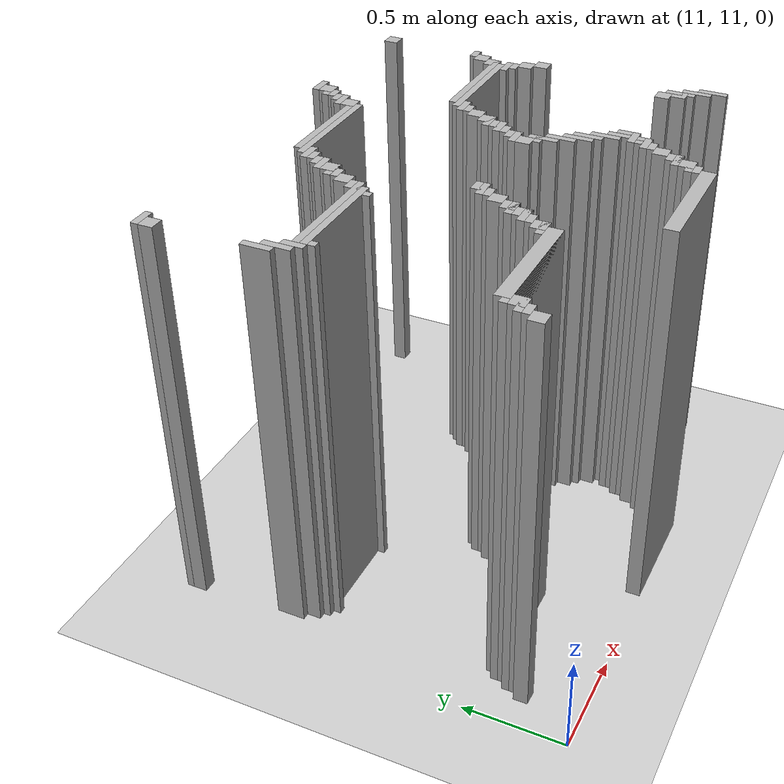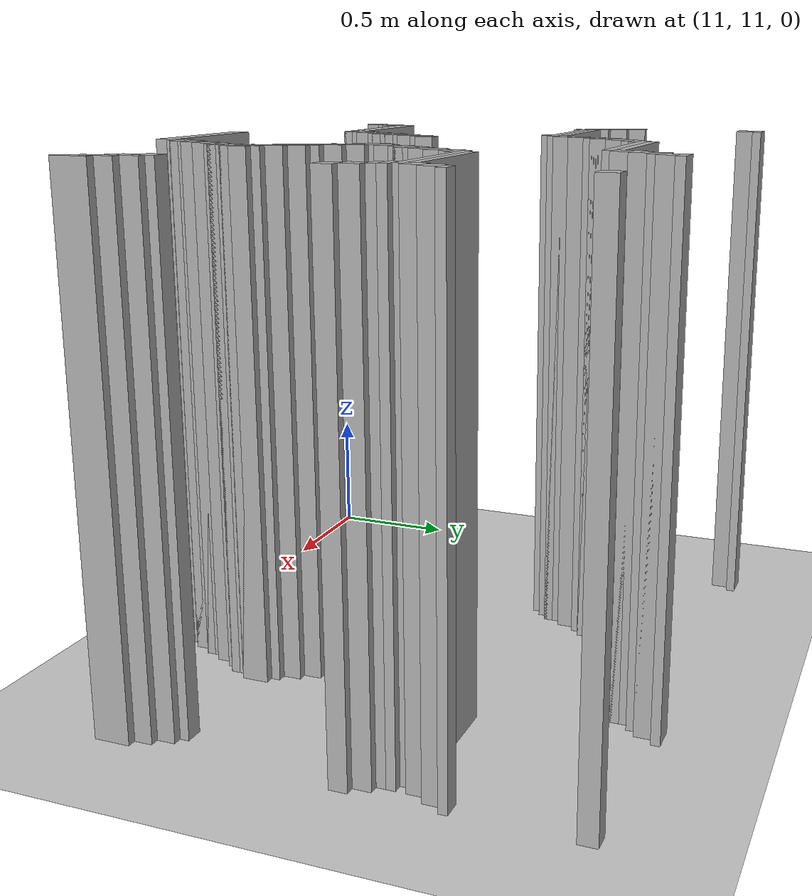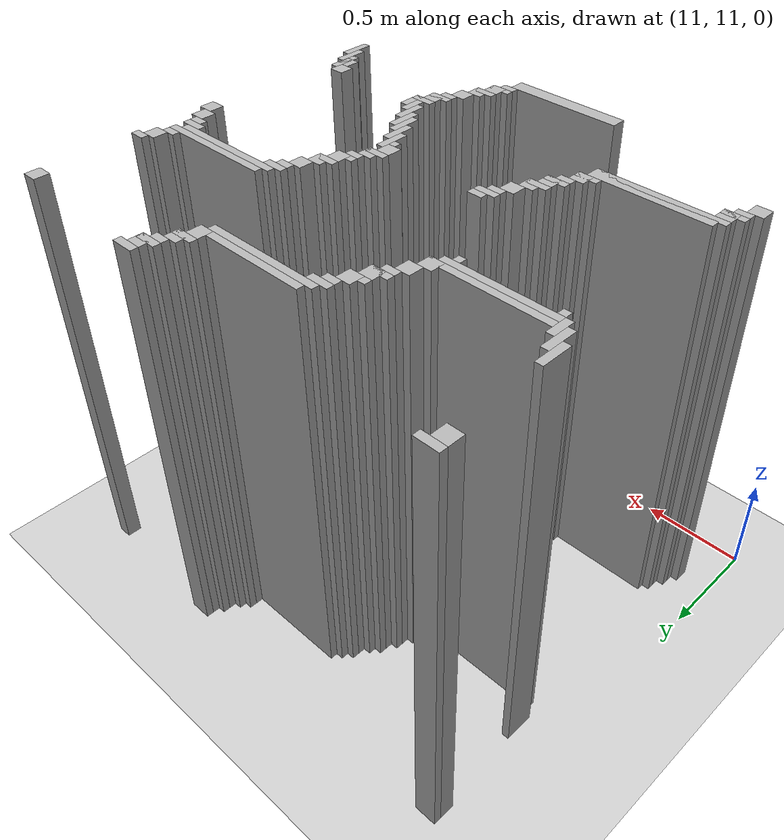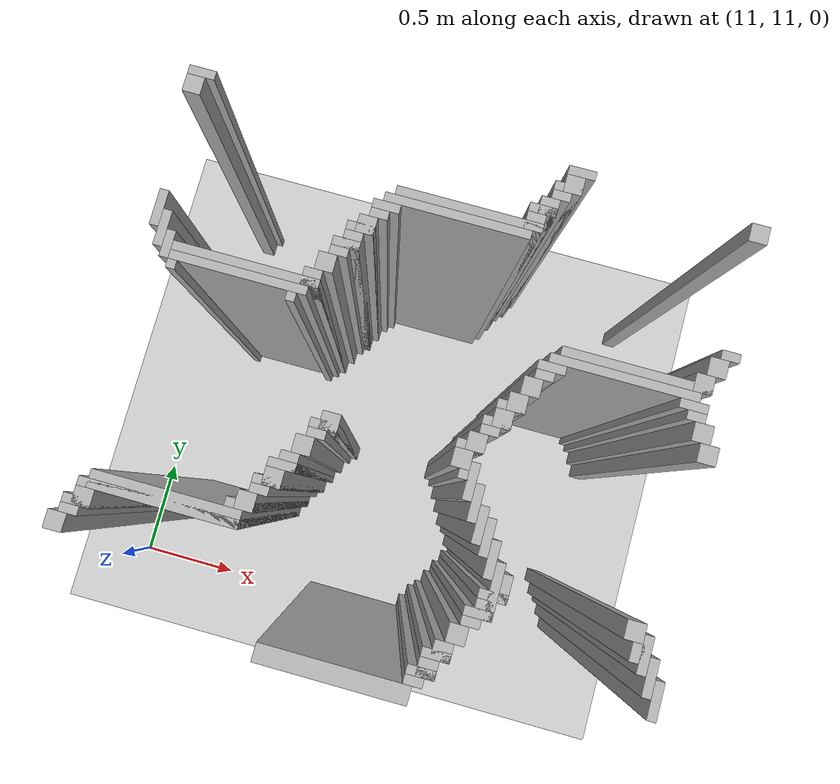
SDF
<sdf version="1.6">
 <world name="slam_world">
  <model name="ground_plane">
   <static>true</static>
   <link name="link">
    <collision name="collision">
     <geometry><plane><normal>0 0 1</normal><size>100 100</size></plane></geometry>
    </collision>
    <visual name="visual">
     <geometry><plane><normal>0 0 1</normal><size>100 100</size></plane></geometry>
     <material>
      <ambient>0.8 0.8 0.8 1</ambient>
      <diffuse>0.8 0.8 0.8 1</diffuse>
      <specular>0.8 0.8 0.8 1</specular>
     </material>
    </visual>
   </link>
  </model>
  <model name="wall_1475">
   <static>true</static>
   <pose>11.189095127610209 12.998839907192576 1.0 0 0 0</pose>
   <link name="link">
    <collision name="collision">
     <geometry><box><size>0.10440835266821345 0.03480278422273782 2.0</size></box></geometry>
    </collision>
    <visual name="visual">
     <geometry><box><size>0.10440835266821345 0.03480278422273782 2.0</size></box></geometry>
     <material><ambient>0.5 0.5 0.5 1</ambient><diffuse>0.7 0.7 0.7 1</diffuse></material>
    </visual>
   </link>
  </model>
  <model name="wall_1476">
   <static>true</static>
   <pose>12.650812064965196 12.998839907192576 1.0 0 0 0</pose>
   <link name="link">
    <collision name="collision">
     <geometry><box><size>0.10440835266821345 0.03480278422273782 2.0</size></box></geometry>
    </collision>
    <visual name="visual">
     <geometry><box><size>0.10440835266821345 0.03480278422273782 2.0</size></box></geometry>
     <material><ambient>0.5 0.5 0.5 1</ambient><diffuse>0.7 0.7 0.7 1</diffuse></material>
    </visual>
   </link>
  </model>
  <model name="wall_1491">
   <static>true</static>
   <pose>11.17169373549884 12.946635730858468 1.0 0 0 0</pose>
   <link name="link">
    <collision name="collision">
     <geometry><box><size>0.06960556844547564 0.06960556844547564 2.0</size></box></geometry>
    </collision>
    <visual name="visual">
     <geometry><box><size>0.06960556844547564 0.06960556844547564 2.0</size></box></geometry>
     <material><ambient>0.5 0.5 0.5 1</ambient><diffuse>0.7 0.7 0.7 1</diffuse></material>
    </visual>
   </link>
  </model>
  <model name="wall_1492">
   <static>true</static>
   <pose>12.633410672853827 12.946635730858468 1.0 0 0 0</pose>
   <link name="link">
    <collision name="collision">
     <geometry><box><size>0.06960556844547564 0.06960556844547564 2.0</size></box></geometry>
    </collision>
    <visual name="visual">
     <geometry><box><size>0.06960556844547564 0.06960556844547564 2.0</size></box></geometry>
     <material><ambient>0.5 0.5 0.5 1</ambient><diffuse>0.7 0.7 0.7 1</diffuse></material>
    </visual>
   </link>
  </model>
  <model name="wall_1493">
   <static>true</static>
   <pose>13.329466357308585 12.946635730858468 1.0 0 0 0</pose>
   <link name="link">
    <collision name="collision">
     <geometry><box><size>0.06960556844547564 0.06960556844547564 2.0</size></box></geometry>
    </collision>
    <visual name="visual">
     <geometry><box><size>0.06960556844547564 0.06960556844547564 2.0</size></box></geometry>
     <material><ambient>0.5 0.5 0.5 1</ambient><diffuse>0.7 0.7 0.7 1</diffuse></material>
    </visual>
   </link>
  </model>
  <model name="wall_1508">
   <static>true</static>
   <pose>12.616009280742459 12.929234338747099 1.0 0 0 0</pose>
   <link name="link">
    <collision name="collision">
     <geometry><box><size>0.10440835266821345 0.03480278422273782 2.0</size></box></geometry>
    </collision>
    <visual name="visual">
     <geometry><box><size>0.10440835266821345 0.03480278422273782 2.0</size></box></geometry>
     <material><ambient>0.5 0.5 0.5 1</ambient><diffuse>0.7 0.7 0.7 1</diffuse></material>
    </visual>
   </link>
  </model>
  <model name="wall_1519">
   <static>true</static>
   <pose>12.59860788863109 12.894431554524362 1.0 0 0 0</pose>
   <link name="link">
    <collision name="collision">
     <geometry><box><size>0.06960556844547564 0.03480278422273782 2.0</size></box></geometry>
    </collision>
    <visual name="visual">
     <geometry><box><size>0.06960556844547564 0.03480278422273782 2.0</size></box></geometry>
     <material><ambient>0.5 0.5 0.5 1</ambient><diffuse>0.7 0.7 0.7 1</diffuse></material>
    </visual>
   </link>
  </model>
  <model name="wall_1533">
   <static>true</static>
   <pose>12.563805104408353 12.842227378190255 1.0 0 0 0</pose>
   <link name="link">
    <collision name="collision">
     <geometry><box><size>0.06960556844547564 0.06960556844547564 2.0</size></box></geometry>
    </collision>
    <visual name="visual">
     <geometry><box><size>0.06960556844547564 0.06960556844547564 2.0</size></box></geometry>
     <material><ambient>0.5 0.5 0.5 1</ambient><diffuse>0.7 0.7 0.7 1</diffuse></material>
    </visual>
   </link>
  </model>
  <model name="wall_1549">
   <static>true</static>
   <pose>12.546403712296984 12.824825986078885 1.0 0 0 0</pose>
   <link name="link">
    <collision name="collision">
     <geometry><box><size>0.10440835266821345 0.03480278422273782 2.0</size></box></geometry>
    </collision>
    <visual name="visual">
     <geometry><box><size>0.10440835266821345 0.03480278422273782 2.0</size></box></geometry>
     <material><ambient>0.5 0.5 0.5 1</ambient><diffuse>0.7 0.7 0.7 1</diffuse></material>
    </visual>
   </link>
  </model>
  <model name="wall_1560">
   <static>true</static>
   <pose>12.529002320185615 12.772621809744779 1.0 0 0 0</pose>
   <link name="link">
    <collision name="collision">
     <geometry><box><size>0.06960556844547564 0.06960556844547564 2.0</size></box></geometry>
    </collision>
    <visual name="visual">
     <geometry><box><size>0.06960556844547564 0.06960556844547564 2.0</size></box></geometry>
     <material><ambient>0.5 0.5 0.5 1</ambient><diffuse>0.7 0.7 0.7 1</diffuse></material>
    </visual>
   </link>
  </model>
  <model name="wall_1572">
   <static>true</static>
   <pose>12.28538283062645 12.75522041763341 1.0 0 0 0</pose>
   <link name="link">
    <collision name="collision">
     <geometry><box><size>0.5568445475638051 0.03480278422273782 2.0</size></box></geometry>
    </collision>
    <visual name="visual">
     <geometry><box><size>0.5568445475638051 0.03480278422273782 2.0</size></box></geometry>
     <material><ambient>0.5 0.5 0.5 1</ambient><diffuse>0.7 0.7 0.7 1</diffuse></material>
    </visual>
   </link>
  </model>
  <model name="wall_1583">
   <static>true</static>
   <pose>12.250580046403712 12.720417633410673 1.0 0 0 0</pose>
   <link name="link">
    <collision name="collision">
     <geometry><box><size>0.5568445475638051 0.03480278422273782 2.0</size></box></geometry>
    </collision>
    <visual name="visual">
     <geometry><box><size>0.5568445475638051 0.03480278422273782 2.0</size></box></geometry>
     <material><ambient>0.5 0.5 0.5 1</ambient><diffuse>0.7 0.7 0.7 1</diffuse></material>
    </visual>
   </link>
  </model>
  <model name="wall_1595">
   <static>true</static>
   <pose>11.989559164733178 12.685614849187935 1.0 0 0 0</pose>
   <link name="link">
    <collision name="collision">
     <geometry><box><size>0.10440835266821345 0.03480278422273782 2.0</size></box></geometry>
    </collision>
    <visual name="visual">
     <geometry><box><size>0.10440835266821345 0.03480278422273782 2.0</size></box></geometry>
     <material><ambient>0.5 0.5 0.5 1</ambient><diffuse>0.7 0.7 0.7 1</diffuse></material>
    </visual>
   </link>
  </model>
  <model name="wall_1607">
   <static>true</static>
   <pose>11.97215777262181 12.650812064965196 1.0 0 0 0</pose>
   <link name="link">
    <collision name="collision">
     <geometry><box><size>0.06960556844547564 0.03480278422273782 2.0</size></box></geometry>
    </collision>
    <visual name="visual">
     <geometry><box><size>0.06960556844547564 0.03480278422273782 2.0</size></box></geometry>
     <material><ambient>0.5 0.5 0.5 1</ambient><diffuse>0.7 0.7 0.7 1</diffuse></material>
    </visual>
   </link>
  </model>
  <model name="wall_1619">
   <static>true</static>
   <pose>11.937354988399072 12.59860788863109 1.0 0 0 0</pose>
   <link name="link">
    <collision name="collision">
     <geometry><box><size>0.06960556844547564 0.06960556844547564 2.0</size></box></geometry>
    </collision>
    <visual name="visual">
     <geometry><box><size>0.06960556844547564 0.06960556844547564 2.0</size></box></geometry>
     <material><ambient>0.5 0.5 0.5 1</ambient><diffuse>0.7 0.7 0.7 1</diffuse></material>
    </visual>
   </link>
  </model>
  <model name="wall_1632">
   <static>true</static>
   <pose>11.919953596287703 12.581206496519721 1.0 0 0 0</pose>
   <link name="link">
    <collision name="collision">
     <geometry><box><size>0.10440835266821345 0.03480278422273782 2.0</size></box></geometry>
    </collision>
    <visual name="visual">
     <geometry><box><size>0.10440835266821345 0.03480278422273782 2.0</size></box></geometry>
     <material><ambient>0.5 0.5 0.5 1</ambient><diffuse>0.7 0.7 0.7 1</diffuse></material>
    </visual>
   </link>
  </model>
  <model name="wall_1643">
   <static>true</static>
   <pose>11.902552204176333 12.529002320185615 1.0 0 0 0</pose>
   <link name="link">
    <collision name="collision">
     <geometry><box><size>0.06960556844547564 0.06960556844547564 2.0</size></box></geometry>
    </collision>
    <visual name="visual">
     <geometry><box><size>0.06960556844547564 0.06960556844547564 2.0</size></box></geometry>
     <material><ambient>0.5 0.5 0.5 1</ambient><diffuse>0.7 0.7 0.7 1</diffuse></material>
    </visual>
   </link>
  </model>
  <model name="wall_1655">
   <static>true</static>
   <pose>11.189095127610209 12.459396751740138 1.0 0 0 0</pose>
   <link name="link">
    <collision name="collision">
     <geometry><box><size>0.03480278422273782 0.13921113689095127 2.0</size></box></geometry>
    </collision>
    <visual name="visual">
     <geometry><box><size>0.03480278422273782 0.13921113689095127 2.0</size></box></geometry>
     <material><ambient>0.5 0.5 0.5 1</ambient><diffuse>0.7 0.7 0.7 1</diffuse></material>
    </visual>
   </link>
  </model>
  <model name="wall_1656">
   <static>true</static>
   <pose>11.885150812064964 12.511600928074245 1.0 0 0 0</pose>
   <link name="link">
    <collision name="collision">
     <geometry><box><size>0.10440835266821345 0.03480278422273782 2.0</size></box></geometry>
    </collision>
    <visual name="visual">
     <geometry><box><size>0.10440835266821345 0.03480278422273782 2.0</size></box></geometry>
     <material><ambient>0.5 0.5 0.5 1</ambient><diffuse>0.7 0.7 0.7 1</diffuse></material>
    </visual>
   </link>
  </model>
  <model name="wall_1664">
   <static>true</static>
   <pose>11.867749419953595 12.476798143851507 1.0 0 0 0</pose>
   <link name="link">
    <collision name="collision">
     <geometry><box><size>0.06960556844547564 0.03480278422273782 2.0</size></box></geometry>
    </collision>
    <visual name="visual">
     <geometry><box><size>0.06960556844547564 0.03480278422273782 2.0</size></box></geometry>
     <material><ambient>0.5 0.5 0.5 1</ambient><diffuse>0.7 0.7 0.7 1</diffuse></material>
    </visual>
   </link>
  </model>
  <model name="wall_1665">
   <static>true</static>
   <pose>13.329466357308585 12.476798143851507 1.0 0 0 0</pose>
   <link name="link">
    <collision name="collision">
     <geometry><box><size>0.06960556844547564 0.03480278422273782 2.0</size></box></geometry>
    </collision>
    <visual name="visual">
     <geometry><box><size>0.06960556844547564 0.03480278422273782 2.0</size></box></geometry>
     <material><ambient>0.5 0.5 0.5 1</ambient><diffuse>0.7 0.7 0.7 1</diffuse></material>
    </visual>
   </link>
  </model>
  <model name="wall_1676">
   <static>true</static>
   <pose>11.223897911832946 12.389791183294664 1.0 0 0 0</pose>
   <link name="link">
    <collision name="collision">
     <geometry><box><size>0.03480278422273782 0.13921113689095127 2.0</size></box></geometry>
    </collision>
    <visual name="visual">
     <geometry><box><size>0.03480278422273782 0.13921113689095127 2.0</size></box></geometry>
     <material><ambient>0.5 0.5 0.5 1</ambient><diffuse>0.7 0.7 0.7 1</diffuse></material>
    </visual>
   </link>
  </model>
  <model name="wall_1677">
   <static>true</static>
   <pose>11.832946635730858 12.424593967517401 1.0 0 0 0</pose>
   <link name="link">
    <collision name="collision">
     <geometry><box><size>0.06960556844547564 0.06960556844547564 2.0</size></box></geometry>
    </collision>
    <visual name="visual">
     <geometry><box><size>0.06960556844547564 0.06960556844547564 2.0</size></box></geometry>
     <material><ambient>0.5 0.5 0.5 1</ambient><diffuse>0.7 0.7 0.7 1</diffuse></material>
    </visual>
   </link>
  </model>
  <model name="wall_1678">
   <static>true</static>
   <pose>13.294663573085847 12.424593967517401 1.0 0 0 0</pose>
   <link name="link">
    <collision name="collision">
     <geometry><box><size>0.06960556844547564 0.06960556844547564 2.0</size></box></geometry>
    </collision>
    <visual name="visual">
     <geometry><box><size>0.06960556844547564 0.06960556844547564 2.0</size></box></geometry>
     <material><ambient>0.5 0.5 0.5 1</ambient><diffuse>0.7 0.7 0.7 1</diffuse></material>
    </visual>
   </link>
  </model>
  <model name="wall_1689">
   <static>true</static>
   <pose>11.258700696055683 12.337587006960556 1.0 0 0 0</pose>
   <link name="link">
    <collision name="collision">
     <geometry><box><size>0.03480278422273782 0.10440835266821345 2.0</size></box></geometry>
    </collision>
    <visual name="visual">
     <geometry><box><size>0.03480278422273782 0.10440835266821345 2.0</size></box></geometry>
     <material><ambient>0.5 0.5 0.5 1</ambient><diffuse>0.7 0.7 0.7 1</diffuse></material>
    </visual>
   </link>
  </model>
  <model name="wall_1690">
   <static>true</static>
   <pose>11.79814385150812 12.354988399071924 1.0 0 0 0</pose>
   <link name="link">
    <collision name="collision">
     <geometry><box><size>0.06960556844547564 0.06960556844547564 2.0</size></box></geometry>
    </collision>
    <visual name="visual">
     <geometry><box><size>0.06960556844547564 0.06960556844547564 2.0</size></box></geometry>
     <material><ambient>0.5 0.5 0.5 1</ambient><diffuse>0.7 0.7 0.7 1</diffuse></material>
    </visual>
   </link>
  </model>
  <model name="wall_1691">
   <static>true</static>
   <pose>13.259860788863108 12.354988399071924 1.0 0 0 0</pose>
   <link name="link">
    <collision name="collision">
     <geometry><box><size>0.06960556844547564 0.06960556844547564 2.0</size></box></geometry>
    </collision>
    <visual name="visual">
     <geometry><box><size>0.06960556844547564 0.06960556844547564 2.0</size></box></geometry>
     <material><ambient>0.5 0.5 0.5 1</ambient><diffuse>0.7 0.7 0.7 1</diffuse></material>
    </visual>
   </link>
  </model>
  <model name="wall_1702">
   <static>true</static>
   <pose>11.554524361948955 12.337587006960556 1.0 0 0 0</pose>
   <link name="link">
    <collision name="collision">
     <geometry><box><size>0.5568445475638051 0.03480278422273782 2.0</size></box></geometry>
    </collision>
    <visual name="visual">
     <geometry><box><size>0.5568445475638051 0.03480278422273782 2.0</size></box></geometry>
     <material><ambient>0.5 0.5 0.5 1</ambient><diffuse>0.7 0.7 0.7 1</diffuse></material>
    </visual>
   </link>
  </model>
  <model name="wall_1703">
   <static>true</static>
   <pose>13.016241299303944 12.337587006960556 1.0 0 0 0</pose>
   <link name="link">
    <collision name="collision">
     <geometry><box><size>0.5568445475638051 0.03480278422273782 2.0</size></box></geometry>
    </collision>
    <visual name="visual">
     <geometry><box><size>0.5568445475638051 0.03480278422273782 2.0</size></box></geometry>
     <material><ambient>0.5 0.5 0.5 1</ambient><diffuse>0.7 0.7 0.7 1</diffuse></material>
    </visual>
   </link>
  </model>
  <model name="wall_1714">
   <static>true</static>
   <pose>11.537122969837586 12.302784222737818 1.0 0 0 0</pose>
   <link name="link">
    <collision name="collision">
     <geometry><box><size>0.5220417633410672 0.03480278422273782 2.0</size></box></geometry>
    </collision>
    <visual name="visual">
     <geometry><box><size>0.5220417633410672 0.03480278422273782 2.0</size></box></geometry>
     <material><ambient>0.5 0.5 0.5 1</ambient><diffuse>0.7 0.7 0.7 1</diffuse></material>
    </visual>
   </link>
  </model>
  <model name="wall_1715">
   <static>true</static>
   <pose>12.981438515081207 12.302784222737818 1.0 0 0 0</pose>
   <link name="link">
    <collision name="collision">
     <geometry><box><size>0.5568445475638051 0.03480278422273782 2.0</size></box></geometry>
    </collision>
    <visual name="visual">
     <geometry><box><size>0.5568445475638051 0.03480278422273782 2.0</size></box></geometry>
     <material><ambient>0.5 0.5 0.5 1</ambient><diffuse>0.7 0.7 0.7 1</diffuse></material>
    </visual>
   </link>
  </model>
  <model name="wall_1731">
   <static>true</static>
   <pose>11.293503480278423 12.267981438515081 1.0 0 0 0</pose>
   <link name="link">
    <collision name="collision">
     <geometry><box><size>0.03480278422273782 0.03480278422273782 2.0</size></box></geometry>
    </collision>
    <visual name="visual">
     <geometry><box><size>0.03480278422273782 0.03480278422273782 2.0</size></box></geometry>
     <material><ambient>0.5 0.5 0.5 1</ambient><diffuse>0.7 0.7 0.7 1</diffuse></material>
    </visual>
   </link>
  </model>
  <model name="wall_1732">
   <static>true</static>
   <pose>11.745939675174013 12.267981438515081 1.0 0 0 0</pose>
   <link name="link">
    <collision name="collision">
     <geometry><box><size>0.03480278422273782 0.03480278422273782 2.0</size></box></geometry>
    </collision>
    <visual name="visual">
     <geometry><box><size>0.03480278422273782 0.03480278422273782 2.0</size></box></geometry>
     <material><ambient>0.5 0.5 0.5 1</ambient><diffuse>0.7 0.7 0.7 1</diffuse></material>
    </visual>
   </link>
  </model>
  <model name="wall_1733">
   <static>true</static>
   <pose>12.720417633410673 12.267981438515081 1.0 0 0 0</pose>
   <link name="link">
    <collision name="collision">
     <geometry><box><size>0.10440835266821345 0.03480278422273782 2.0</size></box></geometry>
    </collision>
    <visual name="visual">
     <geometry><box><size>0.10440835266821345 0.03480278422273782 2.0</size></box></geometry>
     <material><ambient>0.5 0.5 0.5 1</ambient><diffuse>0.7 0.7 0.7 1</diffuse></material>
    </visual>
   </link>
  </model>
  <model name="wall_1734">
   <static>true</static>
   <pose>13.24245939675174 12.267981438515081 1.0 0 0 0</pose>
   <link name="link">
    <collision name="collision">
     <geometry><box><size>0.10440835266821345 0.03480278422273782 2.0</size></box></geometry>
    </collision>
    <visual name="visual">
     <geometry><box><size>0.10440835266821345 0.03480278422273782 2.0</size></box></geometry>
     <material><ambient>0.5 0.5 0.5 1</ambient><diffuse>0.7 0.7 0.7 1</diffuse></material>
    </visual>
   </link>
  </model>
  <model name="wall_1749">
   <static>true</static>
   <pose>12.703016241299304 12.233178654292344 1.0 0 0 0</pose>
   <link name="link">
    <collision name="collision">
     <geometry><box><size>0.06960556844547564 0.03480278422273782 2.0</size></box></geometry>
    </collision>
    <visual name="visual">
     <geometry><box><size>0.06960556844547564 0.03480278422273782 2.0</size></box></geometry>
     <material><ambient>0.5 0.5 0.5 1</ambient><diffuse>0.7 0.7 0.7 1</diffuse></material>
    </visual>
   </link>
  </model>
  <model name="wall_1750">
   <static>true</static>
   <pose>13.259860788863108 12.233178654292344 1.0 0 0 0</pose>
   <link name="link">
    <collision name="collision">
     <geometry><box><size>0.06960556844547564 0.03480278422273782 2.0</size></box></geometry>
    </collision>
    <visual name="visual">
     <geometry><box><size>0.06960556844547564 0.03480278422273782 2.0</size></box></geometry>
     <material><ambient>0.5 0.5 0.5 1</ambient><diffuse>0.7 0.7 0.7 1</diffuse></material>
    </visual>
   </link>
  </model>
  <model name="wall_1765">
   <static>true</static>
   <pose>12.668213457076565 12.180974477958236 1.0 0 0 0</pose>
   <link name="link">
    <collision name="collision">
     <geometry><box><size>0.06960556844547564 0.06960556844547564 2.0</size></box></geometry>
    </collision>
    <visual name="visual">
     <geometry><box><size>0.06960556844547564 0.06960556844547564 2.0</size></box></geometry>
     <material><ambient>0.5 0.5 0.5 1</ambient><diffuse>0.7 0.7 0.7 1</diffuse></material>
    </visual>
   </link>
  </model>
  <model name="wall_1766">
   <static>true</static>
   <pose>13.294663573085847 12.180974477958236 1.0 0 0 0</pose>
   <link name="link">
    <collision name="collision">
     <geometry><box><size>0.06960556844547564 0.06960556844547564 2.0</size></box></geometry>
    </collision>
    <visual name="visual">
     <geometry><box><size>0.06960556844547564 0.06960556844547564 2.0</size></box></geometry>
     <material><ambient>0.5 0.5 0.5 1</ambient><diffuse>0.7 0.7 0.7 1</diffuse></material>
    </visual>
   </link>
  </model>
  <model name="wall_1781">
   <static>true</static>
   <pose>12.633410672853827 12.11136890951276 1.0 0 0 0</pose>
   <link name="link">
    <collision name="collision">
     <geometry><box><size>0.06960556844547564 0.06960556844547564 2.0</size></box></geometry>
    </collision>
    <visual name="visual">
     <geometry><box><size>0.06960556844547564 0.06960556844547564 2.0</size></box></geometry>
     <material><ambient>0.5 0.5 0.5 1</ambient><diffuse>0.7 0.7 0.7 1</diffuse></material>
    </visual>
   </link>
  </model>
  <model name="wall_1782">
   <static>true</static>
   <pose>13.329466357308585 12.11136890951276 1.0 0 0 0</pose>
   <link name="link">
    <collision name="collision">
     <geometry><box><size>0.06960556844547564 0.06960556844547564 2.0</size></box></geometry>
    </collision>
    <visual name="visual">
     <geometry><box><size>0.06960556844547564 0.06960556844547564 2.0</size></box></geometry>
     <material><ambient>0.5 0.5 0.5 1</ambient><diffuse>0.7 0.7 0.7 1</diffuse></material>
    </visual>
   </link>
  </model>
  <model name="wall_1797">
   <static>true</static>
   <pose>12.616009280742459 12.093967517401392 1.0 0 0 0</pose>
   <link name="link">
    <collision name="collision">
     <geometry><box><size>0.10440835266821345 0.03480278422273782 2.0</size></box></geometry>
    </collision>
    <visual name="visual">
     <geometry><box><size>0.10440835266821345 0.03480278422273782 2.0</size></box></geometry>
     <material><ambient>0.5 0.5 0.5 1</ambient><diffuse>0.7 0.7 0.7 1</diffuse></material>
    </visual>
   </link>
  </model>
  <model name="wall_1807">
   <static>true</static>
   <pose>12.59860788863109 12.041763341067284 1.0 0 0 0</pose>
   <link name="link">
    <collision name="collision">
     <geometry><box><size>0.06960556844547564 0.06960556844547564 2.0</size></box></geometry>
    </collision>
    <visual name="visual">
     <geometry><box><size>0.06960556844547564 0.06960556844547564 2.0</size></box></geometry>
     <material><ambient>0.5 0.5 0.5 1</ambient><diffuse>0.7 0.7 0.7 1</diffuse></material>
    </visual>
   </link>
  </model>
  <model name="wall_1823">
   <static>true</static>
   <pose>12.581206496519721 12.024361948955915 1.0 0 0 0</pose>
   <link name="link">
    <collision name="collision">
     <geometry><box><size>0.10440835266821345 0.03480278422273782 2.0</size></box></geometry>
    </collision>
    <visual name="visual">
     <geometry><box><size>0.10440835266821345 0.03480278422273782 2.0</size></box></geometry>
     <material><ambient>0.5 0.5 0.5 1</ambient><diffuse>0.7 0.7 0.7 1</diffuse></material>
    </visual>
   </link>
  </model>
  <model name="wall_1832">
   <static>true</static>
   <pose>12.563805104408353 11.989559164733178 1.0 0 0 0</pose>
   <link name="link">
    <collision name="collision">
     <geometry><box><size>0.06960556844547564 0.03480278422273782 2.0</size></box></geometry>
    </collision>
    <visual name="visual">
     <geometry><box><size>0.06960556844547564 0.03480278422273782 2.0</size></box></geometry>
     <material><ambient>0.5 0.5 0.5 1</ambient><diffuse>0.7 0.7 0.7 1</diffuse></material>
    </visual>
   </link>
  </model>
  <model name="wall_1846">
   <static>true</static>
   <pose>12.529002320185615 11.937354988399072 1.0 0 0 0</pose>
   <link name="link">
    <collision name="collision">
     <geometry><box><size>0.06960556844547564 0.06960556844547564 2.0</size></box></geometry>
    </collision>
    <visual name="visual">
     <geometry><box><size>0.06960556844547564 0.06960556844547564 2.0</size></box></geometry>
     <material><ambient>0.5 0.5 0.5 1</ambient><diffuse>0.7 0.7 0.7 1</diffuse></material>
    </visual>
   </link>
  </model>
  <model name="wall_1862">
   <static>true</static>
   <pose>12.511600928074245 11.919953596287703 1.0 0 0 0</pose>
   <link name="link">
    <collision name="collision">
     <geometry><box><size>0.10440835266821345 0.03480278422273782 2.0</size></box></geometry>
    </collision>
    <visual name="visual">
     <geometry><box><size>0.10440835266821345 0.03480278422273782 2.0</size></box></geometry>
     <material><ambient>0.5 0.5 0.5 1</ambient><diffuse>0.7 0.7 0.7 1</diffuse></material>
    </visual>
   </link>
  </model>
  <model name="wall_1874">
   <static>true</static>
   <pose>12.006960556844547 11.867749419953595 1.0 0 0 0</pose>
   <link name="link">
    <collision name="collision">
     <geometry><box><size>0.06960556844547564 0.06960556844547564 2.0</size></box></geometry>
    </collision>
    <visual name="visual">
     <geometry><box><size>0.06960556844547564 0.06960556844547564 2.0</size></box></geometry>
     <material><ambient>0.5 0.5 0.5 1</ambient><diffuse>0.7 0.7 0.7 1</diffuse></material>
    </visual>
   </link>
  </model>
  <model name="wall_1875">
   <static>true</static>
   <pose>12.494199535962876 11.867749419953595 1.0 0 0 0</pose>
   <link name="link">
    <collision name="collision">
     <geometry><box><size>0.06960556844547564 0.06960556844547564 2.0</size></box></geometry>
    </collision>
    <visual name="visual">
     <geometry><box><size>0.06960556844547564 0.06960556844547564 2.0</size></box></geometry>
     <material><ambient>0.5 0.5 0.5 1</ambient><diffuse>0.7 0.7 0.7 1</diffuse></material>
    </visual>
   </link>
  </model>
  <model name="wall_1889">
   <static>true</static>
   <pose>11.989559164733178 11.850348027842227 1.0 0 0 0</pose>
   <link name="link">
    <collision name="collision">
     <geometry><box><size>0.10440835266821345 0.03480278422273782 2.0</size></box></geometry>
    </collision>
    <visual name="visual">
     <geometry><box><size>0.10440835266821345 0.03480278422273782 2.0</size></box></geometry>
     <material><ambient>0.5 0.5 0.5 1</ambient><diffuse>0.7 0.7 0.7 1</diffuse></material>
    </visual>
   </link>
  </model>
  <model name="wall_1890">
   <static>true</static>
   <pose>12.546403712296984 11.79814385150812 1.0 0 0 0</pose>
   <link name="link">
    <collision name="collision">
     <geometry><box><size>0.03480278422273782 0.13921113689095127 2.0</size></box></geometry>
    </collision>
    <visual name="visual">
     <geometry><box><size>0.03480278422273782 0.13921113689095127 2.0</size></box></geometry>
     <material><ambient>0.5 0.5 0.5 1</ambient><diffuse>0.7 0.7 0.7 1</diffuse></material>
    </visual>
   </link>
  </model>
  <model name="wall_1905">
   <static>true</static>
   <pose>11.97215777262181 11.81554524361949 1.0 0 0 0</pose>
   <link name="link">
    <collision name="collision">
     <geometry><box><size>0.06960556844547564 0.03480278422273782 2.0</size></box></geometry>
    </collision>
    <visual name="visual">
     <geometry><box><size>0.06960556844547564 0.03480278422273782 2.0</size></box></geometry>
     <material><ambient>0.5 0.5 0.5 1</ambient><diffuse>0.7 0.7 0.7 1</diffuse></material>
    </visual>
   </link>
  </model>
  <model name="wall_1906">
   <static>true</static>
   <pose>12.529002320185615 11.81554524361949 1.0 0 0 0</pose>
   <link name="link">
    <collision name="collision">
     <geometry><box><size>0.06960556844547564 0.03480278422273782 2.0</size></box></geometry>
    </collision>
    <visual name="visual">
     <geometry><box><size>0.06960556844547564 0.03480278422273782 2.0</size></box></geometry>
     <material><ambient>0.5 0.5 0.5 1</ambient><diffuse>0.7 0.7 0.7 1</diffuse></material>
    </visual>
   </link>
  </model>
  <model name="wall_1921">
   <static>true</static>
   <pose>11.937354988399072 11.763341067285383 1.0 0 0 0</pose>
   <link name="link">
    <collision name="collision">
     <geometry><box><size>0.06960556844547564 0.06960556844547564 2.0</size></box></geometry>
    </collision>
    <visual name="visual">
     <geometry><box><size>0.06960556844547564 0.06960556844547564 2.0</size></box></geometry>
     <material><ambient>0.5 0.5 0.5 1</ambient><diffuse>0.7 0.7 0.7 1</diffuse></material>
    </visual>
   </link>
  </model>
  <model name="wall_1922">
   <static>true</static>
   <pose>12.581206496519721 11.728538283062644 1.0 0 0 0</pose>
   <link name="link">
    <collision name="collision">
     <geometry><box><size>0.03480278422273782 0.13921113689095127 2.0</size></box></geometry>
    </collision>
    <visual name="visual">
     <geometry><box><size>0.03480278422273782 0.13921113689095127 2.0</size></box></geometry>
     <material><ambient>0.5 0.5 0.5 1</ambient><diffuse>0.7 0.7 0.7 1</diffuse></material>
    </visual>
   </link>
  </model>
  <model name="wall_1937">
   <static>true</static>
   <pose>11.902552204176333 11.693735498839906 1.0 0 0 0</pose>
   <link name="link">
    <collision name="collision">
     <geometry><box><size>0.06960556844547564 0.06960556844547564 2.0</size></box></geometry>
    </collision>
    <visual name="visual">
     <geometry><box><size>0.06960556844547564 0.06960556844547564 2.0</size></box></geometry>
     <material><ambient>0.5 0.5 0.5 1</ambient><diffuse>0.7 0.7 0.7 1</diffuse></material>
    </visual>
   </link>
  </model>
  <model name="wall_1938">
   <static>true</static>
   <pose>12.616009280742459 11.658932714617169 1.0 0 0 0</pose>
   <link name="link">
    <collision name="collision">
     <geometry><box><size>0.03480278422273782 0.13921113689095127 2.0</size></box></geometry>
    </collision>
    <visual name="visual">
     <geometry><box><size>0.03480278422273782 0.13921113689095127 2.0</size></box></geometry>
     <material><ambient>0.5 0.5 0.5 1</ambient><diffuse>0.7 0.7 0.7 1</diffuse></material>
    </visual>
   </link>
  </model>
  <model name="wall_1953">
   <static>true</static>
   <pose>11.885150812064964 11.676334106728538 1.0 0 0 0</pose>
   <link name="link">
    <collision name="collision">
     <geometry><box><size>0.10440835266821345 0.03480278422273782 2.0</size></box></geometry>
    </collision>
    <visual name="visual">
     <geometry><box><size>0.10440835266821345 0.03480278422273782 2.0</size></box></geometry>
     <material><ambient>0.5 0.5 0.5 1</ambient><diffuse>0.7 0.7 0.7 1</diffuse></material>
    </visual>
   </link>
  </model>
  <model name="wall_1954">
   <static>true</static>
   <pose>12.650812064965196 11.624129930394432 1.0 0 0 0</pose>
   <link name="link">
    <collision name="collision">
     <geometry><box><size>0.03480278422273782 0.13921113689095127 2.0</size></box></geometry>
    </collision>
    <visual name="visual">
     <geometry><box><size>0.03480278422273782 0.13921113689095127 2.0</size></box></geometry>
     <material><ambient>0.5 0.5 0.5 1</ambient><diffuse>0.7 0.7 0.7 1</diffuse></material>
    </visual>
   </link>
  </model>
  <model name="wall_1964">
   <static>true</static>
   <pose>11.867749419953595 11.624129930394432 1.0 0 0 0</pose>
   <link name="link">
    <collision name="collision">
     <geometry><box><size>0.06960556844547564 0.06960556844547564 2.0</size></box></geometry>
    </collision>
    <visual name="visual">
     <geometry><box><size>0.06960556844547564 0.06960556844547564 2.0</size></box></geometry>
     <material><ambient>0.5 0.5 0.5 1</ambient><diffuse>0.7 0.7 0.7 1</diffuse></material>
    </visual>
   </link>
  </model>
  <model name="wall_1978">
   <static>true</static>
   <pose>11.850348027842227 11.606728538283063 1.0 0 0 0</pose>
   <link name="link">
    <collision name="collision">
     <geometry><box><size>0.10440835266821345 0.03480278422273782 2.0</size></box></geometry>
    </collision>
    <visual name="visual">
     <geometry><box><size>0.10440835266821345 0.03480278422273782 2.0</size></box></geometry>
     <material><ambient>0.5 0.5 0.5 1</ambient><diffuse>0.7 0.7 0.7 1</diffuse></material>
    </visual>
   </link>
  </model>
  <model name="wall_1979">
   <static>true</static>
   <pose>12.685614849187935 11.554524361948955 1.0 0 0 0</pose>
   <link name="link">
    <collision name="collision">
     <geometry><box><size>0.03480278422273782 0.13921113689095127 2.0</size></box></geometry>
    </collision>
    <visual name="visual">
     <geometry><box><size>0.03480278422273782 0.13921113689095127 2.0</size></box></geometry>
     <material><ambient>0.5 0.5 0.5 1</ambient><diffuse>0.7 0.7 0.7 1</diffuse></material>
    </visual>
   </link>
  </model>
  <model name="wall_1989">
   <static>true</static>
   <pose>11.832946635730858 11.571925754060324 1.0 0 0 0</pose>
   <link name="link">
    <collision name="collision">
     <geometry><box><size>0.06960556844547564 0.03480278422273782 2.0</size></box></geometry>
    </collision>
    <visual name="visual">
     <geometry><box><size>0.06960556844547564 0.03480278422273782 2.0</size></box></geometry>
     <material><ambient>0.5 0.5 0.5 1</ambient><diffuse>0.7 0.7 0.7 1</diffuse></material>
    </visual>
   </link>
  </model>
  <model name="wall_2003">
   <static>true</static>
   <pose>11.79814385150812 11.519721577726218 1.0 0 0 0</pose>
   <link name="link">
    <collision name="collision">
     <geometry><box><size>0.06960556844547564 0.06960556844547564 2.0</size></box></geometry>
    </collision>
    <visual name="visual">
     <geometry><box><size>0.06960556844547564 0.06960556844547564 2.0</size></box></geometry>
     <material><ambient>0.5 0.5 0.5 1</ambient><diffuse>0.7 0.7 0.7 1</diffuse></material>
    </visual>
   </link>
  </model>
  <model name="wall_2004">
   <static>true</static>
   <pose>12.720417633410673 11.450116009280743 1.0 0 0 0</pose>
   <link name="link">
    <collision name="collision">
     <geometry><box><size>0.03480278422273782 0.2088167053364269 2.0</size></box></geometry>
    </collision>
    <visual name="visual">
     <geometry><box><size>0.03480278422273782 0.2088167053364269 2.0</size></box></geometry>
     <material><ambient>0.5 0.5 0.5 1</ambient><diffuse>0.7 0.7 0.7 1</diffuse></material>
    </visual>
   </link>
  </model>
  <model name="wall_2018">
   <static>true</static>
   <pose>11.780742459396752 11.502320185614849 1.0 0 0 0</pose>
   <link name="link">
    <collision name="collision">
     <geometry><box><size>0.10440835266821345 0.03480278422273782 2.0</size></box></geometry>
    </collision>
    <visual name="visual">
     <geometry><box><size>0.10440835266821345 0.03480278422273782 2.0</size></box></geometry>
     <material><ambient>0.5 0.5 0.5 1</ambient><diffuse>0.7 0.7 0.7 1</diffuse></material>
    </visual>
   </link>
  </model>
  <model name="wall_2019">
   <static>true</static>
   <pose>12.75522041763341 11.467517401392112 1.0 0 0 0</pose>
   <link name="link">
    <collision name="collision">
     <geometry><box><size>0.03480278422273782 0.10440835266821345 2.0</size></box></geometry>
    </collision>
    <visual name="visual">
     <geometry><box><size>0.03480278422273782 0.10440835266821345 2.0</size></box></geometry>
     <material><ambient>0.5 0.5 0.5 1</ambient><diffuse>0.7 0.7 0.7 1</diffuse></material>
    </visual>
   </link>
  </model>
  <model name="wall_2031">
   <static>true</static>
   <pose>11.519721577726218 11.450116009280743 1.0 0 0 0</pose>
   <link name="link">
    <collision name="collision">
     <geometry><box><size>0.5568445475638051 0.06960556844547564 2.0</size></box></geometry>
    </collision>
    <visual name="visual">
     <geometry><box><size>0.5568445475638051 0.06960556844547564 2.0</size></box></geometry>
     <material><ambient>0.5 0.5 0.5 1</ambient><diffuse>0.7 0.7 0.7 1</diffuse></material>
    </visual>
   </link>
  </model>
  <model name="wall_2032">
   <static>true</static>
   <pose>13.22505800464037 11.450116009280743 1.0 0 0 0</pose>
   <link name="link">
    <collision name="collision">
     <geometry><box><size>0.06960556844547564 0.06960556844547564 2.0</size></box></geometry>
    </collision>
    <visual name="visual">
     <geometry><box><size>0.06960556844547564 0.06960556844547564 2.0</size></box></geometry>
     <material><ambient>0.5 0.5 0.5 1</ambient><diffuse>0.7 0.7 0.7 1</diffuse></material>
    </visual>
   </link>
  </model>
  <model name="wall_2045">
   <static>true</static>
   <pose>11.502320185614849 11.432714617169372 1.0 0 0 0</pose>
   <link name="link">
    <collision name="collision">
     <geometry><box><size>0.5916473317865429 0.03480278422273782 2.0</size></box></geometry>
    </collision>
    <visual name="visual">
     <geometry><box><size>0.5916473317865429 0.03480278422273782 2.0</size></box></geometry>
     <material><ambient>0.5 0.5 0.5 1</ambient><diffuse>0.7 0.7 0.7 1</diffuse></material>
    </visual>
   </link>
  </model>
  <model name="wall_2046">
   <static>true</static>
   <pose>12.720417633410673 11.432714617169372 1.0 0 0 0</pose>
   <link name="link">
    <collision name="collision">
     <geometry><box><size>0.10440835266821345 0.03480278422273782 2.0</size></box></geometry>
    </collision>
    <visual name="visual">
     <geometry><box><size>0.10440835266821345 0.03480278422273782 2.0</size></box></geometry>
     <material><ambient>0.5 0.5 0.5 1</ambient><diffuse>0.7 0.7 0.7 1</diffuse></material>
    </visual>
   </link>
  </model>
  <model name="wall_2047">
   <static>true</static>
   <pose>13.277262180974477 11.380510440835266 1.0 0 0 0</pose>
   <link name="link">
    <collision name="collision">
     <geometry><box><size>0.03480278422273782 0.13921113689095127 2.0</size></box></geometry>
    </collision>
    <visual name="visual">
     <geometry><box><size>0.03480278422273782 0.13921113689095127 2.0</size></box></geometry>
     <material><ambient>0.5 0.5 0.5 1</ambient><diffuse>0.7 0.7 0.7 1</diffuse></material>
    </visual>
   </link>
  </model>
  <model name="wall_2062">
   <static>true</static>
   <pose>11.241299303944315 11.380510440835266 1.0 0 0 0</pose>
   <link name="link">
    <collision name="collision">
     <geometry><box><size>0.06960556844547564 0.06960556844547564 2.0</size></box></geometry>
    </collision>
    <visual name="visual">
     <geometry><box><size>0.06960556844547564 0.06960556844547564 2.0</size></box></geometry>
     <material><ambient>0.5 0.5 0.5 1</ambient><diffuse>0.7 0.7 0.7 1</diffuse></material>
    </visual>
   </link>
  </model>
  <model name="wall_2063">
   <static>true</static>
   <pose>12.703016241299304 11.380510440835266 1.0 0 0 0</pose>
   <link name="link">
    <collision name="collision">
     <geometry><box><size>0.06960556844547564 0.06960556844547564 2.0</size></box></geometry>
    </collision>
    <visual name="visual">
     <geometry><box><size>0.06960556844547564 0.06960556844547564 2.0</size></box></geometry>
     <material><ambient>0.5 0.5 0.5 1</ambient><diffuse>0.7 0.7 0.7 1</diffuse></material>
    </visual>
   </link>
  </model>
  <model name="wall_2064">
   <static>true</static>
   <pose>13.259860788863108 11.380510440835266 1.0 0 0 0</pose>
   <link name="link">
    <collision name="collision">
     <geometry><box><size>0.06960556844547564 0.06960556844547564 2.0</size></box></geometry>
    </collision>
    <visual name="visual">
     <geometry><box><size>0.06960556844547564 0.06960556844547564 2.0</size></box></geometry>
     <material><ambient>0.5 0.5 0.5 1</ambient><diffuse>0.7 0.7 0.7 1</diffuse></material>
    </visual>
   </link>
  </model>
  <model name="wall_2079">
   <static>true</static>
   <pose>11.223897911832946 11.363109048723897 1.0 0 0 0</pose>
   <link name="link">
    <collision name="collision">
     <geometry><box><size>0.10440835266821345 0.03480278422273782 2.0</size></box></geometry>
    </collision>
    <visual name="visual">
     <geometry><box><size>0.10440835266821345 0.03480278422273782 2.0</size></box></geometry>
     <material><ambient>0.5 0.5 0.5 1</ambient><diffuse>0.7 0.7 0.7 1</diffuse></material>
    </visual>
   </link>
  </model>
  <model name="wall_2080">
   <static>true</static>
   <pose>12.685614849187935 11.363109048723897 1.0 0 0 0</pose>
   <link name="link">
    <collision name="collision">
     <geometry><box><size>0.10440835266821345 0.03480278422273782 2.0</size></box></geometry>
    </collision>
    <visual name="visual">
     <geometry><box><size>0.10440835266821345 0.03480278422273782 2.0</size></box></geometry>
     <material><ambient>0.5 0.5 0.5 1</ambient><diffuse>0.7 0.7 0.7 1</diffuse></material>
    </visual>
   </link>
  </model>
  <model name="wall_2081">
   <static>true</static>
   <pose>13.312064965197216 11.310904872389791 1.0 0 0 0</pose>
   <link name="link">
    <collision name="collision">
     <geometry><box><size>0.03480278422273782 0.13921113689095127 2.0</size></box></geometry>
    </collision>
    <visual name="visual">
     <geometry><box><size>0.03480278422273782 0.13921113689095127 2.0</size></box></geometry>
     <material><ambient>0.5 0.5 0.5 1</ambient><diffuse>0.7 0.7 0.7 1</diffuse></material>
    </visual>
   </link>
  </model>
  <model name="wall_2089">
   <static>true</static>
   <pose>11.206496519721577 11.32830626450116 1.0 0 0 0</pose>
   <link name="link">
    <collision name="collision">
     <geometry><box><size>0.06960556844547564 0.03480278422273782 2.0</size></box></geometry>
    </collision>
    <visual name="visual">
     <geometry><box><size>0.06960556844547564 0.03480278422273782 2.0</size></box></geometry>
     <material><ambient>0.5 0.5 0.5 1</ambient><diffuse>0.7 0.7 0.7 1</diffuse></material>
    </visual>
   </link>
  </model>
  <model name="wall_2090">
   <static>true</static>
   <pose>12.668213457076565 11.32830626450116 1.0 0 0 0</pose>
   <link name="link">
    <collision name="collision">
     <geometry><box><size>0.06960556844547564 0.03480278422273782 2.0</size></box></geometry>
    </collision>
    <visual name="visual">
     <geometry><box><size>0.06960556844547564 0.03480278422273782 2.0</size></box></geometry>
     <material><ambient>0.5 0.5 0.5 1</ambient><diffuse>0.7 0.7 0.7 1</diffuse></material>
    </visual>
   </link>
  </model>
  <model name="wall_2104">
   <static>true</static>
   <pose>11.17169373549884 11.276102088167052 1.0 0 0 0</pose>
   <link name="link">
    <collision name="collision">
     <geometry><box><size>0.06960556844547564 0.06960556844547564 2.0</size></box></geometry>
    </collision>
    <visual name="visual">
     <geometry><box><size>0.06960556844547564 0.06960556844547564 2.0</size></box></geometry>
     <material><ambient>0.5 0.5 0.5 1</ambient><diffuse>0.7 0.7 0.7 1</diffuse></material>
    </visual>
   </link>
  </model>
  <model name="wall_2105">
   <static>true</static>
   <pose>12.633410672853827 11.276102088167052 1.0 0 0 0</pose>
   <link name="link">
    <collision name="collision">
     <geometry><box><size>0.06960556844547564 0.06960556844547564 2.0</size></box></geometry>
    </collision>
    <visual name="visual">
     <geometry><box><size>0.06960556844547564 0.06960556844547564 2.0</size></box></geometry>
     <material><ambient>0.5 0.5 0.5 1</ambient><diffuse>0.7 0.7 0.7 1</diffuse></material>
    </visual>
   </link>
  </model>
  <model name="wall_2106">
   <static>true</static>
   <pose>13.346867749419953 11.241299303944315 1.0 0 0 0</pose>
   <link name="link">
    <collision name="collision">
     <geometry><box><size>0.03480278422273782 0.13921113689095127 2.0</size></box></geometry>
    </collision>
    <visual name="visual">
     <geometry><box><size>0.03480278422273782 0.13921113689095127 2.0</size></box></geometry>
     <material><ambient>0.5 0.5 0.5 1</ambient><diffuse>0.7 0.7 0.7 1</diffuse></material>
    </visual>
   </link>
  </model>
  <model name="wall_2122">
   <static>true</static>
   <pose>12.59860788863109 11.206496519721577 1.0 0 0 0</pose>
   <link name="link">
    <collision name="collision">
     <geometry><box><size>0.06960556844547564 0.06960556844547564 2.0</size></box></geometry>
    </collision>
    <visual name="visual">
     <geometry><box><size>0.06960556844547564 0.06960556844547564 2.0</size></box></geometry>
     <material><ambient>0.5 0.5 0.5 1</ambient><diffuse>0.7 0.7 0.7 1</diffuse></material>
    </visual>
   </link>
  </model>
  <model name="wall_2139">
   <static>true</static>
   <pose>12.581206496519721 11.189095127610209 1.0 0 0 0</pose>
   <link name="link">
    <collision name="collision">
     <geometry><box><size>0.10440835266821345 0.03480278422273782 2.0</size></box></geometry>
    </collision>
    <visual name="visual">
     <geometry><box><size>0.10440835266821345 0.03480278422273782 2.0</size></box></geometry>
     <material><ambient>0.5 0.5 0.5 1</ambient><diffuse>0.7 0.7 0.7 1</diffuse></material>
    </visual>
   </link>
  </model>
  <model name="wall_2148">
   <static>true</static>
   <pose>12.563805104408353 11.1368909512761 1.0 0 0 0</pose>
   <link name="link">
    <collision name="collision">
     <geometry><box><size>0.06960556844547564 0.06960556844547564 2.0</size></box></geometry>
    </collision>
    <visual name="visual">
     <geometry><box><size>0.06960556844547564 0.06960556844547564 2.0</size></box></geometry>
     <material><ambient>0.5 0.5 0.5 1</ambient><diffuse>0.7 0.7 0.7 1</diffuse></material>
    </visual>
   </link>
  </model>
  <model name="wall_2163">
   <static>true</static>
   <pose>12.546403712296984 11.119489559164732 1.0 0 0 0</pose>
   <link name="link">
    <collision name="collision">
     <geometry><box><size>0.10440835266821345 0.03480278422273782 2.0</size></box></geometry>
    </collision>
    <visual name="visual">
     <geometry><box><size>0.10440835266821345 0.03480278422273782 2.0</size></box></geometry>
     <material><ambient>0.5 0.5 0.5 1</ambient><diffuse>0.7 0.7 0.7 1</diffuse></material>
    </visual>
   </link>
  </model>
  <model name="wall_2172">
   <static>true</static>
   <pose>12.529002320185615 11.084686774941995 1.0 0 0 0</pose>
   <link name="link">
    <collision name="collision">
     <geometry><box><size>0.06960556844547564 0.03480278422273782 2.0</size></box></geometry>
    </collision>
    <visual name="visual">
     <geometry><box><size>0.06960556844547564 0.03480278422273782 2.0</size></box></geometry>
     <material><ambient>0.5 0.5 0.5 1</ambient><diffuse>0.7 0.7 0.7 1</diffuse></material>
    </visual>
   </link>
  </model>
  <model name="wall_2183">
   <static>true</static>
   <pose>12.250580046403712 11.032482598607888 1.0 0 0 0</pose>
   <link name="link">
    <collision name="collision">
     <geometry><box><size>0.5568445475638051 0.06960556844547564 2.0</size></box></geometry>
    </collision>
    <visual name="visual">
     <geometry><box><size>0.5568445475638051 0.06960556844547564 2.0</size></box></geometry>
     <material><ambient>0.5 0.5 0.5 1</ambient><diffuse>0.7 0.7 0.7 1</diffuse></material>
    </visual>
   </link>
  </model>
 </world>
</sdf>
